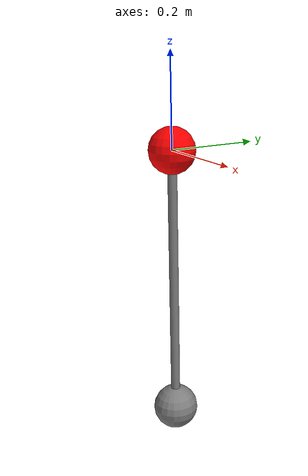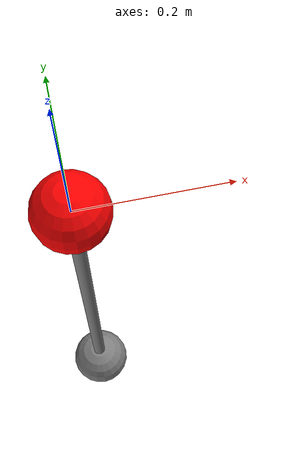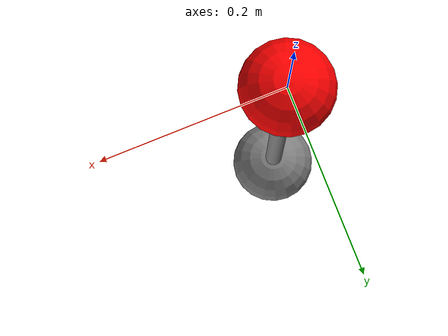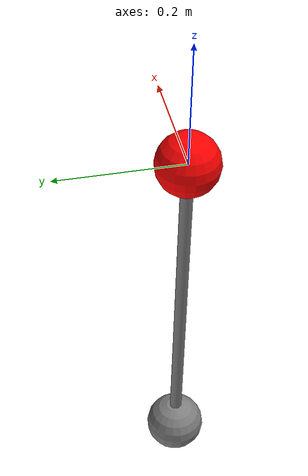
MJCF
<mujoco model='cartpole'>
  <compiler inertiafromgeom = "auto"/>

  <size nkey="1"/>

  <custom>
    <numeric name="control_timestep" data="0.04" />
    <numeric name="three_numbers" data="1.0 2.0 3.0" />
  </custom>

  <option timestep='0.001' integrator = 'Euler'/>

  <asset>
    <texture type="skybox" builtin="checker" rgb1="1 1 1" rgb2="1 1 1" width="200" height="200"  />
 </asset>

  <worldbody>
    <body name='cart' pos='0 0 0'>
      <joint name = 'slider' type = 'slide'   pos = '0 0 0' axis = '1 0 0' />
      <geom  name = 'cart'   type = 'sphere'  pos = '0 0 0' size="0.05" mass="0.03" rgba='1 0 0 1' />

        <body name='pole' pos='0 0 0'>
          <joint name='hinge' type='hinge' pos='0 0 0' axis='0 1 0'/>
          <geom type="cylinder" fromto="0 0 0 0 0 -0.6" size="0.01" mass="0" />
          <geom name="blob" type="sphere" pos="0 0 -0.6" size="0.05" mass="0.03" />
        </body>

    </body>

  </worldbody>

  <actuator>
    <motor name='slide' joint='slider' />
  </actuator>

</mujoco>
